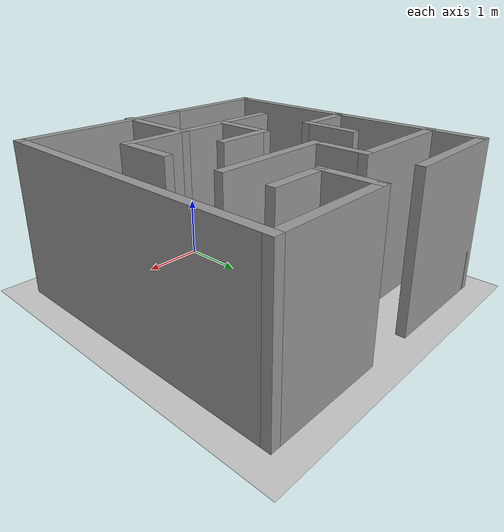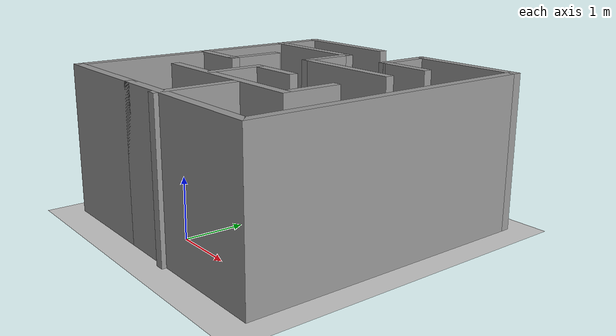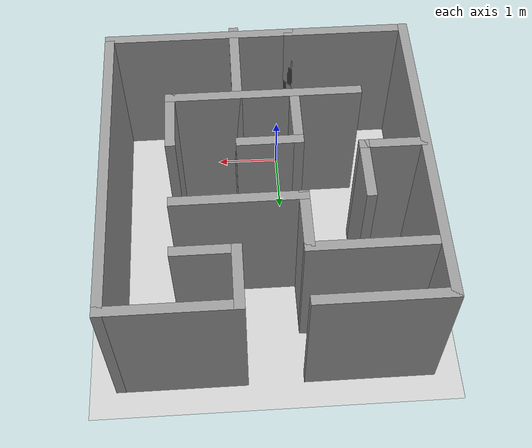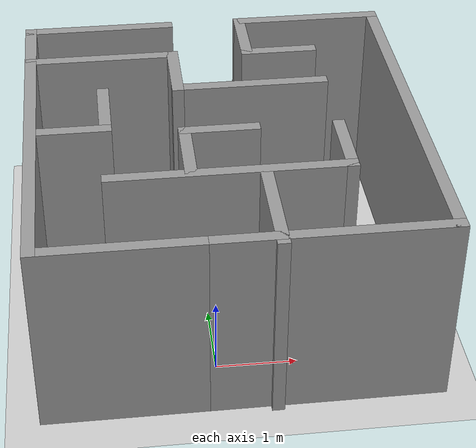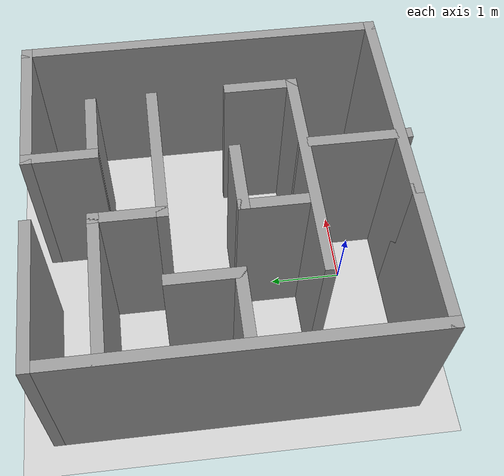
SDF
<sdf version="1.7">
 <world name="default">
  <light name="sun" type="directional">
   <pose>0 0 10 0 -0 0</pose>
   <diffuse>0.8 0.8 0.8 1</diffuse>
   <specular>0.2 0.2 0.2 1</specular>
   <attenuation>
    <range>1000</range>
    <constant>0.9</constant>
    <linear>0.01</linear>
    <quadratic>0.001</quadratic>
   </attenuation>
   <direction>-0.5 0.1 -0.9</direction>
   <spot><inner_angle>0</inner_angle><outer_angle>0</outer_angle><falloff>0</falloff></spot>
  </light>
  <model name="ground_plane">
   <static>1</static>
   <link name="link">
    <collision name="collision">
     <geometry><plane><normal>0 0 1</normal><size>100 100</size></plane></geometry>
     <surface>
      <contact><collide_bitmask>65535</collide_bitmask></contact>
      <friction><ode><mu>100</mu><mu2>50</mu2></ode></friction>
     </surface>
    </collision>
    <visual name="visual">
     <cast_shadows>0</cast_shadows>
     <geometry><plane><normal>0 0 1</normal><size>100 100</size></plane></geometry>
     <material>
      <script><uri>file://media/materials/scripts/gazebo.material</uri><name>Gazebo/Grey</name></script>
     </material>
    </visual>
   </link>
  </model>
  <gravity>0 0 -9.8</gravity>
  <magnetic_field>6e-06 2.3e-05 -4.2e-05</magnetic_field>
  <atmosphere type="adiabatic"/>
  <physics type="ode">
   <max_step_size>0.001</max_step_size>
   <real_time_factor>1</real_time_factor>
   <real_time_update_rate>1000</real_time_update_rate>
  </physics>
  <scene><ambient>0.4 0.4 0.4 1</ambient><background>0.7 0.7 0.7 1</background><shadows>1</shadows></scene>
  <audio><device>default</device></audio>
  <spherical_coordinates>
   <surface_model>EARTH_WGS84</surface_model>
   <latitude_deg>0</latitude_deg>
   <longitude_deg>0</longitude_deg>
   <elevation>0</elevation>
   <heading_deg>0</heading_deg>
  </spherical_coordinates>
  <model name="maze0">
   <pose>0.280001 2.17 0 0 -0 0</pose>
   <link name="Wall_0">
    <collision name="Wall_0_Collision">
     <geometry><box><size>2 0.15 2.5</size></box></geometry>
     <pose>0 0 1.25 0 -0 0</pose>
    </collision>
    <visual name="Wall_0_Visual">
     <pose>0 0 1.25 0 -0 0</pose>
     <geometry><box><size>2 0.15 2.5</size></box></geometry>
     <material>
      <script><uri>file://media/materials/scripts/gazebo.material</uri><name>Gazebo/Grey</name></script>
      <ambient>1 1 1 1</ambient>
     </material>
     <meta><layer>0</layer></meta>
    </visual>
    <pose>-1.425 2.01967 0 0 -0 3.14159</pose>
   </link>
   <link name="Wall_1">
    <collision name="Wall_1_Collision">
     <geometry><box><size>5 0.15 2.5</size></box></geometry>
     <pose>0 0 1.25 0 -0 0</pose>
    </collision>
    <visual name="Wall_1_Visual">
     <pose>0 0 1.25 0 -0 0</pose>
     <geometry><box><size>5 0.15 2.5</size></box></geometry>
     <material>
      <script><uri>file://media/materials/scripts/gazebo.material</uri><name>Gazebo/Grey</name></script>
      <ambient>1 1 1 1</ambient>
     </material>
     <meta><layer>0</layer></meta>
    </visual>
    <pose>-2.35 -0.405328 0 0 -0 -1.5708</pose>
   </link>
   <link name="Wall_11">
    <collision name="Wall_11_Collision">
     <geometry><box><size>2 0.15 2.5</size></box></geometry>
     <pose>0 0 1.25 0 -0 0</pose>
    </collision>
    <visual name="Wall_11_Visual">
     <pose>0 0 1.25 0 -0 0</pose>
     <geometry><box><size>2 0.15 2.5</size></box></geometry>
     <material>
      <script><uri>file://media/materials/scripts/gazebo.material</uri><name>Gazebo/Grey</name></script>
      <ambient>1 1 1 1</ambient>
     </material>
     <meta><layer>0</layer></meta>
    </visual>
    <pose>0.436557 0.352125 0 0 -0 3.14159</pose>
   </link>
   <link name="Wall_12">
    <collision name="Wall_12_Collision">
     <geometry><box><size>1 0.15 2.5</size></box></geometry>
     <pose>0 0 1.25 0 -0 0</pose>
    </collision>
    <visual name="Wall_12_Visual">
     <pose>0 0 1.25 0 -0 0</pose>
     <geometry><box><size>1 0.15 2.5</size></box></geometry>
     <material>
      <script><uri>file://media/materials/scripts/gazebo.material</uri><name>Gazebo/Grey</name></script>
      <ambient>1 1 1 1</ambient>
     </material>
     <meta><layer>0</layer></meta>
    </visual>
    <pose>-0.488443 0.777125 0 0 -0 1.5708</pose>
   </link>
   <link name="Wall_13">
    <collision name="Wall_13_Collision">
     <geometry><box><size>2 0.15 2.5</size></box></geometry>
     <pose>0 0 1.25 0 -0 0</pose>
    </collision>
    <visual name="Wall_13_Visual">
     <pose>0 0 1.25 0 -0 0</pose>
     <geometry><box><size>2 0.15 2.5</size></box></geometry>
     <material>
      <script><uri>file://media/materials/scripts/gazebo.material</uri><name>Gazebo/Grey</name></script>
      <ambient>1 1 1 1</ambient>
     </material>
     <meta><layer>0</layer></meta>
    </visual>
    <pose>-1.41344 1.20213 0 0 -0 3.14159</pose>
   </link>
   <link name="Wall_15">
    <collision name="Wall_15_Collision">
     <geometry><box><size>1 0.15 2.5</size></box></geometry>
     <pose>0 0 1.25 0 -0 0</pose>
    </collision>
    <visual name="Wall_15_Visual">
     <pose>0 0 1.25 0 -0 0</pose>
     <geometry><box><size>1 0.15 2.5</size></box></geometry>
     <material>
      <script><uri>file://media/materials/scripts/gazebo.material</uri><name>Gazebo/Grey</name></script>
      <ambient>1 1 1 1</ambient>
     </material>
     <meta><layer>0</layer></meta>
    </visual>
    <pose>-1.43946 -0.072875 0 0 -0 -1.5708</pose>
   </link>
   <link name="Wall_16">
    <collision name="Wall_16_Collision">
     <geometry><box><size>1 0.15 2.5</size></box></geometry>
     <pose>0 0 1.25 0 -0 0</pose>
    </collision>
    <visual name="Wall_16_Visual">
     <pose>0 0 1.25 0 -0 0</pose>
     <geometry><box><size>1 0.15 2.5</size></box></geometry>
     <material>
      <script><uri>file://media/materials/scripts/gazebo.material</uri><name>Gazebo/Grey</name></script>
      <ambient>1 1 1 1</ambient>
     </material>
     <meta><layer>0</layer></meta>
    </visual>
    <pose>-1.86446 -0.497875 0 0 -0 3.14159</pose>
   </link>
   <link name="Wall_18">
    <collision name="Wall_18_Collision">
     <geometry><box><size>3 0.15 2.5</size></box></geometry>
     <pose>0 0 1.25 0 -0 0</pose>
    </collision>
    <visual name="Wall_18_Visual">
     <pose>0 0 1.25 0 -0 0</pose>
     <geometry><box><size>3 0.15 2.5</size></box></geometry>
     <material>
      <script><uri>file://media/materials/scripts/gazebo.material</uri><name>Gazebo/Grey</name></script>
      <ambient>1 1 1 1</ambient>
     </material>
     <meta><layer>0</layer></meta>
    </visual>
    <pose>-0.027612 -1.55467 0 0 -0 0</pose>
   </link>
   <link name="Wall_19">
    <collision name="Wall_19_Collision">
     <geometry><box><size>1 0.15 2.5</size></box></geometry>
     <pose>0 0 1.25 0 -0 0</pose>
    </collision>
    <visual name="Wall_19_Visual">
     <pose>0 0 1.25 0 -0 0</pose>
     <geometry><box><size>1 0.15 2.5</size></box></geometry>
     <material>
      <script><uri>file://media/materials/scripts/gazebo.material</uri><name>Gazebo/Grey</name></script>
      <ambient>1 1 1 1</ambient>
     </material>
     <meta><layer>0</layer></meta>
    </visual>
    <pose>1.39739 -1.12967 0 0 -0 1.5708</pose>
   </link>
   <link name="Wall_2">
    <collision name="Wall_2_Collision">
     <geometry><box><size>2 0.15 2.5</size></box></geometry>
     <pose>0 0 1.25 0 -0 0</pose>
    </collision>
    <visual name="Wall_2_Visual">
     <pose>0 0 1.25 0 -0 0</pose>
     <geometry><box><size>2 0.15 2.5</size></box></geometry>
     <material>
      <script><uri>file://media/materials/scripts/gazebo.material</uri><name>Gazebo/Grey</name></script>
      <ambient>1 1 1 1</ambient>
     </material>
     <meta><layer>0</layer></meta>
    </visual>
    <pose>-1.425 -2.83033 0 0 -0 0</pose>
   </link>
   <link name="Wall_21">
    <collision name="Wall_21_Collision">
     <geometry><box><size>1 0.15 2.5</size></box></geometry>
     <pose>0 0 1.25 0 -0 0</pose>
    </collision>
    <visual name="Wall_21_Visual">
     <pose>0 0 1.25 0 -0 0</pose>
     <geometry><box><size>1 0.15 2.5</size></box></geometry>
     <material>
      <script><uri>file://media/materials/scripts/gazebo.material</uri><name>Gazebo/Grey</name></script>
      <ambient>1 1 1 1</ambient>
     </material>
     <meta><layer>0</layer></meta>
    </visual>
    <pose>-0.492639 -1.07707 0 0 -0 1.5708</pose>
   </link>
   <link name="Wall_22">
    <collision name="Wall_22_Collision">
     <geometry><box><size>1 0.15 2.5</size></box></geometry>
     <pose>0 0 1.25 0 -0 0</pose>
    </collision>
    <visual name="Wall_22_Visual">
     <pose>0 0 1.25 0 -0 0</pose>
     <geometry><box><size>1 0.15 2.5</size></box></geometry>
     <material>
      <script><uri>file://media/materials/scripts/gazebo.material</uri><name>Gazebo/Grey</name></script>
      <ambient>1 1 1 1</ambient>
     </material>
     <meta><layer>0</layer></meta>
    </visual>
    <pose>-0.067639 -0.652071 0 0 -0 0</pose>
   </link>
   <link name="Wall_24">
    <collision name="Wall_24_Collision">
     <geometry><box><size>1.5 0.15 2.5</size></box></geometry>
     <pose>0 0 1.25 0 -0 0</pose>
    </collision>
    <visual name="Wall_24_Visual">
     <pose>0 0 1.25 0 -0 0</pose>
     <geometry><box><size>1.5 0.15 2.5</size></box></geometry>
     <material>
      <script><uri>file://media/materials/scripts/gazebo.material</uri><name>Gazebo/Grey</name></script>
      <ambient>1 1 1 1</ambient>
     </material>
     <meta><layer>0</layer></meta>
    </visual>
    <pose>0.375283 -2.22967 0 0 -0 -1.5708</pose>
   </link>
   <link name="Wall_5">
    <collision name="Wall_5_Collision">
     <geometry><box><size>3 0.15 2.5</size></box></geometry>
     <pose>0 0 1.25 0 -0 0</pose>
    </collision>
    <visual name="Wall_5_Visual">
     <pose>0 0 1.25 0 -0 0</pose>
     <geometry><box><size>3 0.15 2.5</size></box></geometry>
     <material>
      <script><uri>file://media/materials/scripts/gazebo.material</uri><name>Gazebo/Grey</name></script>
      <ambient>1 1 1 1</ambient>
     </material>
     <meta><layer>0</layer></meta>
    </visual>
    <pose>0.925 -2.83033 0 0 -0 0</pose>
   </link>
   <link name="Wall_6">
    <collision name="Wall_6_Collision">
     <geometry><box><size>5 0.15 2.5</size></box></geometry>
     <pose>0 0 1.25 0 -0 0</pose>
    </collision>
    <visual name="Wall_6_Visual">
     <pose>0 0 1.25 0 -0 0</pose>
     <geometry><box><size>5 0.15 2.5</size></box></geometry>
     <material>
      <script><uri>file://media/materials/scripts/gazebo.material</uri><name>Gazebo/Grey</name></script>
      <ambient>1 1 1 1</ambient>
     </material>
     <meta><layer>0</layer></meta>
    </visual>
    <pose>2.35 -0.405328 0 0 -0 1.5708</pose>
   </link>
   <link name="Wall_7">
    <collision name="Wall_7_Collision">
     <geometry><box><size>2 0.15 2.5</size></box></geometry>
     <pose>0 0 1.25 0 -0 0</pose>
    </collision>
    <visual name="Wall_7_Visual">
     <pose>0 0 1.25 0 -0 0</pose>
     <geometry><box><size>2 0.15 2.5</size></box></geometry>
     <material>
      <script><uri>file://media/materials/scripts/gazebo.material</uri><name>Gazebo/Grey</name></script>
      <ambient>1 1 1 1</ambient>
     </material>
     <meta><layer>0</layer></meta>
    </visual>
    <pose>1.425 2.01967 0 0 -0 3.14159</pose>
   </link>
   <link name="Wall_8">
    <collision name="Wall_8_Collision">
     <geometry><box><size>1 0.15 2.5</size></box></geometry>
     <pose>0 0 1.25 0 -0 0</pose>
    </collision>
    <visual name="Wall_8_Visual">
     <pose>0 0 1.25 0 -0 0</pose>
     <geometry><box><size>1 0.15 2.5</size></box></geometry>
     <material>
      <script><uri>file://media/materials/scripts/gazebo.material</uri><name>Gazebo/Grey</name></script>
      <ambient>1 1 1 1</ambient>
     </material>
     <meta><layer>0</layer></meta>
    </visual>
    <pose>0.5 1.59467 0 0 -0 -1.5708</pose>
   </link>
   <link name="Wall_9">
    <collision name="Wall_9_Collision">
     <geometry><box><size>1 0.15 2.5</size></box></geometry>
     <pose>0 0 1.25 0 -0 0</pose>
    </collision>
    <visual name="Wall_9_Visual">
     <pose>0 0 1.25 0 -0 0</pose>
     <geometry><box><size>1 0.15 2.5</size></box></geometry>
     <material>
      <script><uri>file://media/materials/scripts/gazebo.material</uri><name>Gazebo/Grey</name></script>
      <ambient>1 1 1 1</ambient>
     </material>
     <meta><layer>0</layer></meta>
    </visual>
    <pose>0.925 1.16967 0 0 -0 0</pose>
   </link>
   <static>1</static>
  </model>
 </world>
</sdf>
